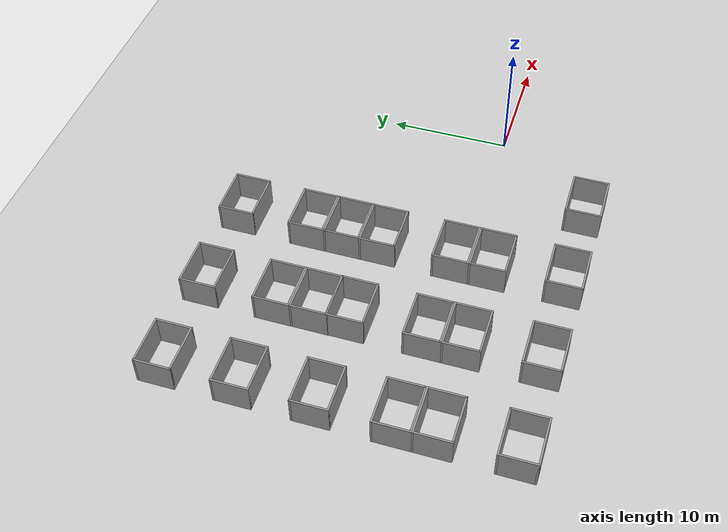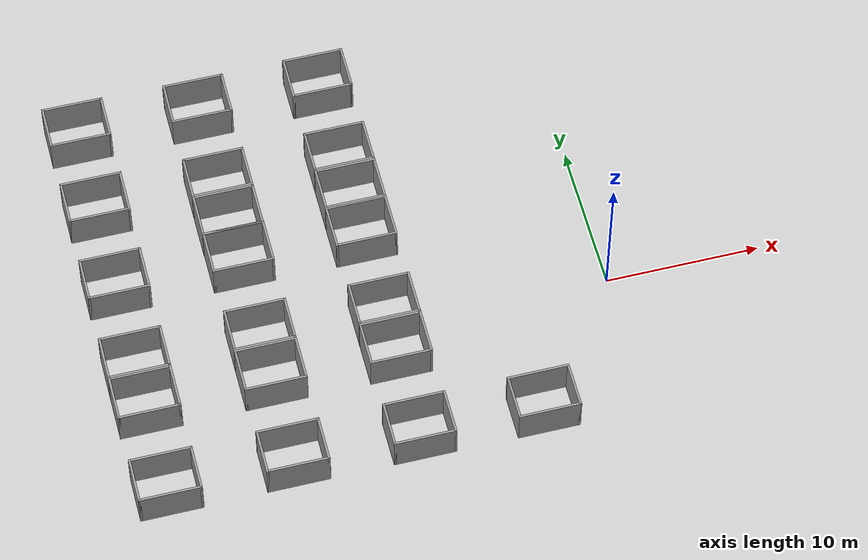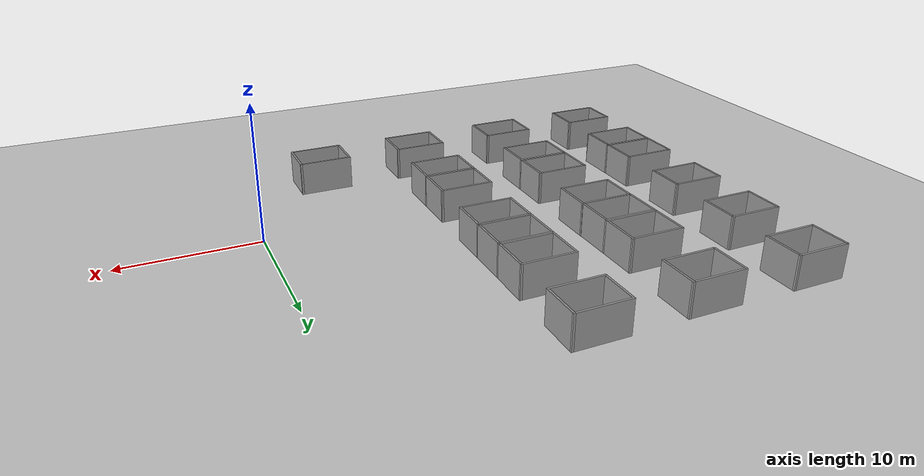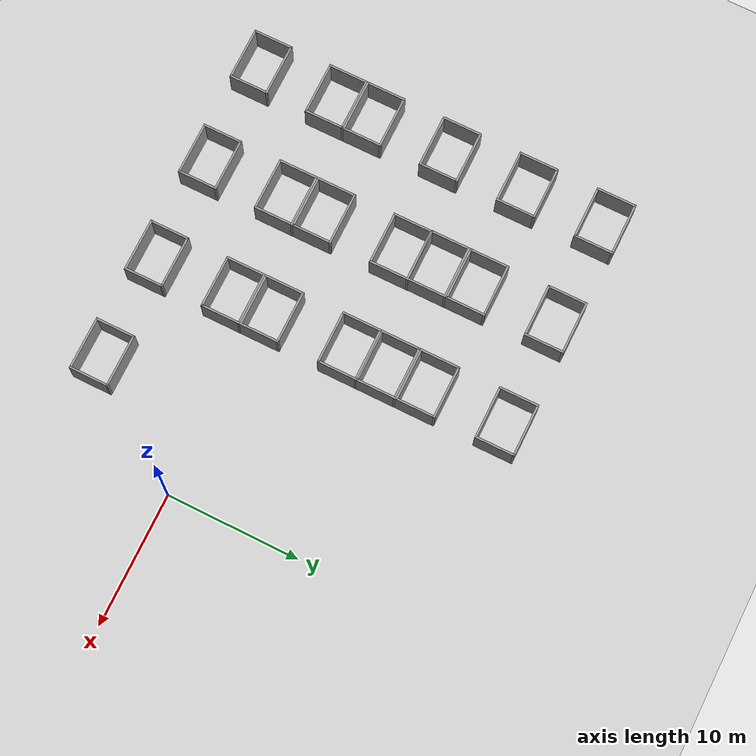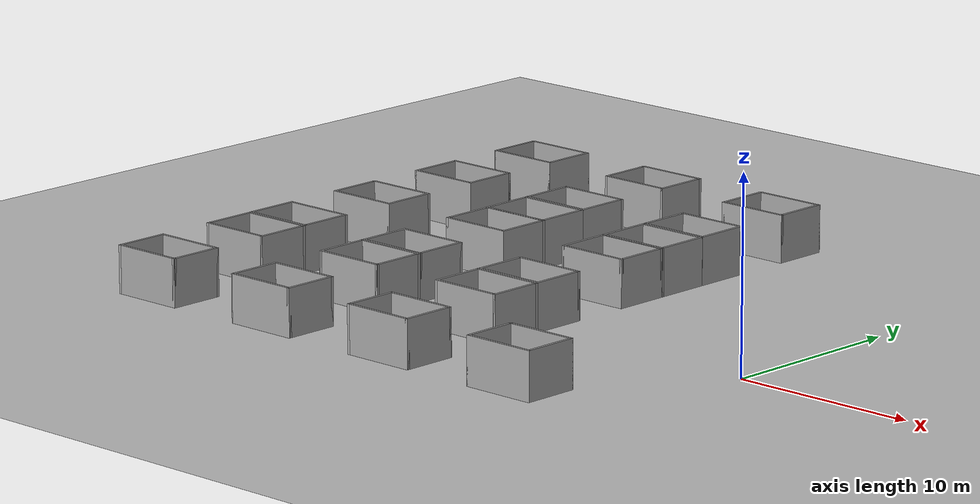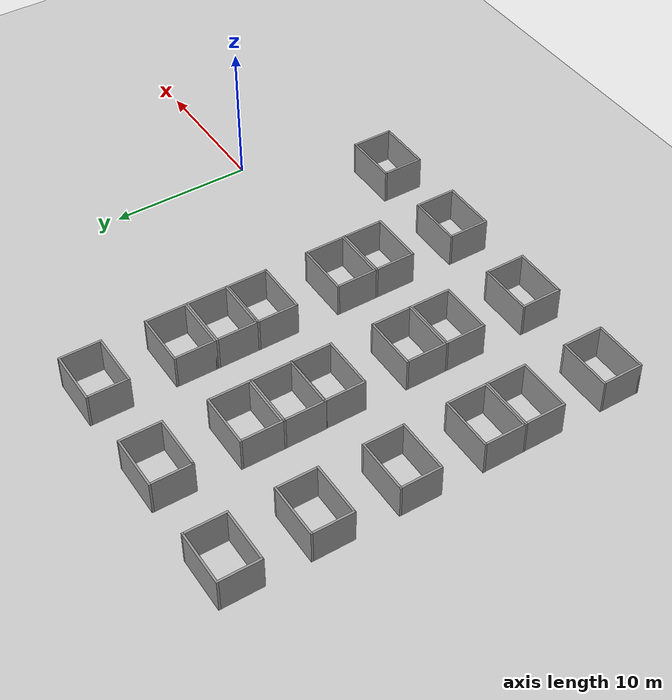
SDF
<sdf version="1.6">
 <world name="default">
  <model name="ground_plane">
   <static>1</static>
   <link name="link">
    <collision name="collision">
     <geometry><plane><normal>0 0 1</normal><size>105 105</size></plane></geometry>
     <surface>
      <contact><collide_bitmask>65535</collide_bitmask></contact>
      <friction><ode><mu>100</mu><mu2>50</mu2></ode></friction>
     </surface>
    </collision>
    <visual name="visual">
     <cast_shadows>0</cast_shadows>
     <geometry><plane><normal>0 0 1</normal><size>105 105</size></plane></geometry>
     <material>
      <script><uri>file://media/materials/scripts/gazebo.material</uri><name>Gazebo/Grey</name></script>
     </material>
    </visual>
   </link>
  </model>
  <model name="base3x4_2">
   <pose>-30.4005 -8.26913 0 0 -0 0</pose>
   <link name="Wall_18">
    <collision name="Wall_18_Collision">
     <geometry><box><size>3 0.15 2.5</size></box></geometry>
     <pose>0 0 1.25 0 -0 0</pose>
    </collision>
    <visual name="Wall_18_Visual">
     <pose>0 0 1.25 0 -0 0</pose>
     <geometry><box><size>3 0.15 2.5</size></box></geometry>
     <material>
      <script><uri>file://media/materials/scripts/gazebo.material</uri><name>Gazebo/Grey</name></script>
      <ambient>1 1 1 1</ambient>
     </material>
     <meta><layer>0</layer></meta>
    </visual>
    <pose>-1.925 -0 0 0 -0 -1.5708</pose>
   </link>
   <link name="Wall_19">
    <collision name="Wall_19_Collision">
     <geometry><box><size>4 0.15 2.5</size></box></geometry>
     <pose>0 0 1.25 0 -0 0</pose>
    </collision>
    <visual name="Wall_19_Visual">
     <pose>0 0 1.25 0 -0 0</pose>
     <geometry><box><size>4 0.15 2.5</size></box></geometry>
     <material>
      <script><uri>file://media/materials/scripts/gazebo.material</uri><name>Gazebo/Grey</name></script>
      <ambient>1 1 1 1</ambient>
     </material>
     <meta><layer>0</layer></meta>
    </visual>
    <pose>-0 -1.425 0 0 -0 0</pose>
   </link>
   <link name="Wall_20">
    <collision name="Wall_20_Collision">
     <geometry><box><size>3 0.15 2.5</size></box></geometry>
     <pose>0 0 1.25 0 -0 0</pose>
    </collision>
    <visual name="Wall_20_Visual">
     <pose>0 0 1.25 0 -0 0</pose>
     <geometry><box><size>3 0.15 2.5</size></box></geometry>
     <material>
      <script><uri>file://media/materials/scripts/gazebo.material</uri><name>Gazebo/Grey</name></script>
      <ambient>1 1 1 1</ambient>
     </material>
     <meta><layer>0</layer></meta>
    </visual>
    <pose>1.925 -0 0 0 -0 1.5708</pose>
   </link>
   <link name="Wall_21">
    <collision name="Wall_21_Collision">
     <geometry><box><size>4 0.15 2.5</size></box></geometry>
     <pose>0 0 1.25 0 -0 0</pose>
    </collision>
    <visual name="Wall_21_Visual">
     <pose>0 0 1.25 0 -0 0</pose>
     <geometry><box><size>4 0.15 2.5</size></box></geometry>
     <material>
      <script><uri>file://media/materials/scripts/gazebo.material</uri><name>Gazebo/Grey</name></script>
      <ambient>1 1 1 1</ambient>
     </material>
     <meta><layer>0</layer></meta>
    </visual>
    <pose>-0 1.425 0 0 -0 3.14159</pose>
   </link>
   <static>1</static>
  </model>
  <model name="base3x4_6">
   <pose>-30.4053 -2.27913 0 0 -0 0</pose>
   <link name="Wall_18">
    <collision name="Wall_18_Collision">
     <geometry><box><size>3 0.15 2.5</size></box></geometry>
     <pose>0 0 1.25 0 -0 0</pose>
    </collision>
    <visual name="Wall_18_Visual">
     <pose>0 0 1.25 0 -0 0</pose>
     <geometry><box><size>3 0.15 2.5</size></box></geometry>
     <material>
      <script><uri>file://media/materials/scripts/gazebo.material</uri><name>Gazebo/Grey</name></script>
      <ambient>1 1 1 1</ambient>
     </material>
     <meta><layer>0</layer></meta>
    </visual>
    <pose>-1.925 -0 0 0 -0 -1.5708</pose>
   </link>
   <link name="Wall_19">
    <collision name="Wall_19_Collision">
     <geometry><box><size>4 0.15 2.5</size></box></geometry>
     <pose>0 0 1.25 0 -0 0</pose>
    </collision>
    <visual name="Wall_19_Visual">
     <pose>0 0 1.25 0 -0 0</pose>
     <geometry><box><size>4 0.15 2.5</size></box></geometry>
     <material>
      <script><uri>file://media/materials/scripts/gazebo.material</uri><name>Gazebo/Grey</name></script>
      <ambient>1 1 1 1</ambient>
     </material>
     <meta><layer>0</layer></meta>
    </visual>
    <pose>-0 -1.425 0 0 -0 0</pose>
   </link>
   <link name="Wall_20">
    <collision name="Wall_20_Collision">
     <geometry><box><size>3 0.15 2.5</size></box></geometry>
     <pose>0 0 1.25 0 -0 0</pose>
    </collision>
    <visual name="Wall_20_Visual">
     <pose>0 0 1.25 0 -0 0</pose>
     <geometry><box><size>3 0.15 2.5</size></box></geometry>
     <material>
      <script><uri>file://media/materials/scripts/gazebo.material</uri><name>Gazebo/Grey</name></script>
      <ambient>1 1 1 1</ambient>
     </material>
     <meta><layer>0</layer></meta>
    </visual>
    <pose>1.925 -0 0 0 -0 1.5708</pose>
   </link>
   <link name="Wall_21">
    <collision name="Wall_21_Collision">
     <geometry><box><size>4 0.15 2.5</size></box></geometry>
     <pose>0 0 1.25 0 -0 0</pose>
    </collision>
    <visual name="Wall_21_Visual">
     <pose>0 0 1.25 0 -0 0</pose>
     <geometry><box><size>4 0.15 2.5</size></box></geometry>
     <material>
      <script><uri>file://media/materials/scripts/gazebo.material</uri><name>Gazebo/Grey</name></script>
      <ambient>1 1 1 1</ambient>
     </material>
     <meta><layer>0</layer></meta>
    </visual>
    <pose>-0 1.425 0 0 -0 3.14159</pose>
   </link>
   <static>1</static>
  </model>
  <model name="base3x4_8">
   <pose>-30.4105 0.701698 0 0 -0 0</pose>
   <link name="Wall_18">
    <collision name="Wall_18_Collision">
     <geometry><box><size>3 0.15 2.5</size></box></geometry>
     <pose>0 0 1.25 0 -0 0</pose>
    </collision>
    <visual name="Wall_18_Visual">
     <pose>0 0 1.25 0 -0 0</pose>
     <geometry><box><size>3 0.15 2.5</size></box></geometry>
     <material>
      <script><uri>file://media/materials/scripts/gazebo.material</uri><name>Gazebo/Grey</name></script>
      <ambient>1 1 1 1</ambient>
     </material>
     <meta><layer>0</layer></meta>
    </visual>
    <pose>-1.925 -0 0 0 -0 -1.5708</pose>
   </link>
   <link name="Wall_19">
    <collision name="Wall_19_Collision">
     <geometry><box><size>4 0.15 2.5</size></box></geometry>
     <pose>0 0 1.25 0 -0 0</pose>
    </collision>
    <visual name="Wall_19_Visual">
     <pose>0 0 1.25 0 -0 0</pose>
     <geometry><box><size>4 0.15 2.5</size></box></geometry>
     <material>
      <script><uri>file://media/materials/scripts/gazebo.material</uri><name>Gazebo/Grey</name></script>
      <ambient>1 1 1 1</ambient>
     </material>
     <meta><layer>0</layer></meta>
    </visual>
    <pose>-0 -1.425 0 0 -0 0</pose>
   </link>
   <link name="Wall_20">
    <collision name="Wall_20_Collision">
     <geometry><box><size>3 0.15 2.5</size></box></geometry>
     <pose>0 0 1.25 0 -0 0</pose>
    </collision>
    <visual name="Wall_20_Visual">
     <pose>0 0 1.25 0 -0 0</pose>
     <geometry><box><size>3 0.15 2.5</size></box></geometry>
     <material>
      <script><uri>file://media/materials/scripts/gazebo.material</uri><name>Gazebo/Grey</name></script>
      <ambient>1 1 1 1</ambient>
     </material>
     <meta><layer>0</layer></meta>
    </visual>
    <pose>1.925 -0 0 0 -0 1.5708</pose>
   </link>
   <link name="Wall_21">
    <collision name="Wall_21_Collision">
     <geometry><box><size>4 0.15 2.5</size></box></geometry>
     <pose>0 0 1.25 0 -0 0</pose>
    </collision>
    <visual name="Wall_21_Visual">
     <pose>0 0 1.25 0 -0 0</pose>
     <geometry><box><size>4 0.15 2.5</size></box></geometry>
     <material>
      <script><uri>file://media/materials/scripts/gazebo.material</uri><name>Gazebo/Grey</name></script>
      <ambient>1 1 1 1</ambient>
     </material>
     <meta><layer>0</layer></meta>
    </visual>
    <pose>-0 1.425 0 0 -0 3.14159</pose>
   </link>
   <static>1</static>
  </model>
  <model name="base3x4_13">
   <pose>-30.4247 6.69734 0 0 -0 0</pose>
   <link name="Wall_18">
    <collision name="Wall_18_Collision">
     <geometry><box><size>3 0.15 2.5</size></box></geometry>
     <pose>0 0 1.25 0 -0 0</pose>
    </collision>
    <visual name="Wall_18_Visual">
     <pose>0 0 1.25 0 -0 0</pose>
     <geometry><box><size>3 0.15 2.5</size></box></geometry>
     <material>
      <script><uri>file://media/materials/scripts/gazebo.material</uri><name>Gazebo/Grey</name></script>
      <ambient>1 1 1 1</ambient>
     </material>
     <meta><layer>0</layer></meta>
    </visual>
    <pose>-1.925 -0 0 0 -0 -1.5708</pose>
   </link>
   <link name="Wall_19">
    <collision name="Wall_19_Collision">
     <geometry><box><size>4 0.15 2.5</size></box></geometry>
     <pose>0 0 1.25 0 -0 0</pose>
    </collision>
    <visual name="Wall_19_Visual">
     <pose>0 0 1.25 0 -0 0</pose>
     <geometry><box><size>4 0.15 2.5</size></box></geometry>
     <material>
      <script><uri>file://media/materials/scripts/gazebo.material</uri><name>Gazebo/Grey</name></script>
      <ambient>1 1 1 1</ambient>
     </material>
     <meta><layer>0</layer></meta>
    </visual>
    <pose>-0 -1.425 0 0 -0 0</pose>
   </link>
   <link name="Wall_20">
    <collision name="Wall_20_Collision">
     <geometry><box><size>3 0.15 2.5</size></box></geometry>
     <pose>0 0 1.25 0 -0 0</pose>
    </collision>
    <visual name="Wall_20_Visual">
     <pose>0 0 1.25 0 -0 0</pose>
     <geometry><box><size>3 0.15 2.5</size></box></geometry>
     <material>
      <script><uri>file://media/materials/scripts/gazebo.material</uri><name>Gazebo/Grey</name></script>
      <ambient>1 1 1 1</ambient>
     </material>
     <meta><layer>0</layer></meta>
    </visual>
    <pose>1.925 -0 0 0 -0 1.5708</pose>
   </link>
   <link name="Wall_21">
    <collision name="Wall_21_Collision">
     <geometry><box><size>4 0.15 2.5</size></box></geometry>
     <pose>0 0 1.25 0 -0 0</pose>
    </collision>
    <visual name="Wall_21_Visual">
     <pose>0 0 1.25 0 -0 0</pose>
     <geometry><box><size>4 0.15 2.5</size></box></geometry>
     <material>
      <script><uri>file://media/materials/scripts/gazebo.material</uri><name>Gazebo/Grey</name></script>
      <ambient>1 1 1 1</ambient>
     </material>
     <meta><layer>0</layer></meta>
    </visual>
    <pose>-0 1.425 0 0 -0 3.14159</pose>
   </link>
   <static>1</static>
  </model>
  <model name="base3x4_68">
   <pose>-22.41 -8.21789 0 0 -0 0</pose>
   <link name="Wall_18">
    <collision name="Wall_18_Collision">
     <geometry><box><size>3 0.15 2.5</size></box></geometry>
     <pose>0 0 1.25 0 -0 0</pose>
    </collision>
    <visual name="Wall_18_Visual">
     <pose>0 0 1.25 0 -0 0</pose>
     <geometry><box><size>3 0.15 2.5</size></box></geometry>
     <material>
      <script><uri>file://media/materials/scripts/gazebo.material</uri><name>Gazebo/Grey</name></script>
      <ambient>1 1 1 1</ambient>
     </material>
     <meta><layer>0</layer></meta>
    </visual>
    <pose>-1.925 -0 0 0 -0 -1.5708</pose>
   </link>
   <link name="Wall_19">
    <collision name="Wall_19_Collision">
     <geometry><box><size>4 0.15 2.5</size></box></geometry>
     <pose>0 0 1.25 0 -0 0</pose>
    </collision>
    <visual name="Wall_19_Visual">
     <pose>0 0 1.25 0 -0 0</pose>
     <geometry><box><size>4 0.15 2.5</size></box></geometry>
     <material>
      <script><uri>file://media/materials/scripts/gazebo.material</uri><name>Gazebo/Grey</name></script>
      <ambient>1 1 1 1</ambient>
     </material>
     <meta><layer>0</layer></meta>
    </visual>
    <pose>-0 -1.425 0 0 -0 0</pose>
   </link>
   <link name="Wall_20">
    <collision name="Wall_20_Collision">
     <geometry><box><size>3 0.15 2.5</size></box></geometry>
     <pose>0 0 1.25 0 -0 0</pose>
    </collision>
    <visual name="Wall_20_Visual">
     <pose>0 0 1.25 0 -0 0</pose>
     <geometry><box><size>3 0.15 2.5</size></box></geometry>
     <material>
      <script><uri>file://media/materials/scripts/gazebo.material</uri><name>Gazebo/Grey</name></script>
      <ambient>1 1 1 1</ambient>
     </material>
     <meta><layer>0</layer></meta>
    </visual>
    <pose>1.925 -0 0 0 -0 1.5708</pose>
   </link>
   <link name="Wall_21">
    <collision name="Wall_21_Collision">
     <geometry><box><size>4 0.15 2.5</size></box></geometry>
     <pose>0 0 1.25 0 -0 0</pose>
    </collision>
    <visual name="Wall_21_Visual">
     <pose>0 0 1.25 0 -0 0</pose>
     <geometry><box><size>4 0.15 2.5</size></box></geometry>
     <material>
      <script><uri>file://media/materials/scripts/gazebo.material</uri><name>Gazebo/Grey</name></script>
      <ambient>1 1 1 1</ambient>
     </material>
     <meta><layer>0</layer></meta>
    </visual>
    <pose>-0 1.425 0 0 -0 3.14159</pose>
   </link>
   <static>1</static>
  </model>
  <model name="base3x4_70">
   <pose>-22.4069 -2.22304 0 0 -0 0</pose>
   <link name="Wall_18">
    <collision name="Wall_18_Collision">
     <geometry><box><size>3 0.15 2.5</size></box></geometry>
     <pose>0 0 1.25 0 -0 0</pose>
    </collision>
    <visual name="Wall_18_Visual">
     <pose>0 0 1.25 0 -0 0</pose>
     <geometry><box><size>3 0.15 2.5</size></box></geometry>
     <material>
      <script><uri>file://media/materials/scripts/gazebo.material</uri><name>Gazebo/Grey</name></script>
      <ambient>1 1 1 1</ambient>
     </material>
     <meta><layer>0</layer></meta>
    </visual>
    <pose>-1.925 -0 0 0 -0 -1.5708</pose>
   </link>
   <link name="Wall_19">
    <collision name="Wall_19_Collision">
     <geometry><box><size>4 0.15 2.5</size></box></geometry>
     <pose>0 0 1.25 0 -0 0</pose>
    </collision>
    <visual name="Wall_19_Visual">
     <pose>0 0 1.25 0 -0 0</pose>
     <geometry><box><size>4 0.15 2.5</size></box></geometry>
     <material>
      <script><uri>file://media/materials/scripts/gazebo.material</uri><name>Gazebo/Grey</name></script>
      <ambient>1 1 1 1</ambient>
     </material>
     <meta><layer>0</layer></meta>
    </visual>
    <pose>-0 -1.425 0 0 -0 0</pose>
   </link>
   <link name="Wall_20">
    <collision name="Wall_20_Collision">
     <geometry><box><size>3 0.15 2.5</size></box></geometry>
     <pose>0 0 1.25 0 -0 0</pose>
    </collision>
    <visual name="Wall_20_Visual">
     <pose>0 0 1.25 0 -0 0</pose>
     <geometry><box><size>3 0.15 2.5</size></box></geometry>
     <material>
      <script><uri>file://media/materials/scripts/gazebo.material</uri><name>Gazebo/Grey</name></script>
      <ambient>1 1 1 1</ambient>
     </material>
     <meta><layer>0</layer></meta>
    </visual>
    <pose>1.925 -0 0 0 -0 1.5708</pose>
   </link>
   <link name="Wall_21">
    <collision name="Wall_21_Collision">
     <geometry><box><size>4 0.15 2.5</size></box></geometry>
     <pose>0 0 1.25 0 -0 0</pose>
    </collision>
    <visual name="Wall_21_Visual">
     <pose>0 0 1.25 0 -0 0</pose>
     <geometry><box><size>4 0.15 2.5</size></box></geometry>
     <material>
      <script><uri>file://media/materials/scripts/gazebo.material</uri><name>Gazebo/Grey</name></script>
      <ambient>1 1 1 1</ambient>
     </material>
     <meta><layer>0</layer></meta>
    </visual>
    <pose>-0 1.425 0 0 -0 3.14159</pose>
   </link>
   <static>1</static>
  </model>
  <model name="base3x4_71">
   <pose>-22.4105 0.763278 0 0 -0 0</pose>
   <link name="Wall_18">
    <collision name="Wall_18_Collision">
     <geometry><box><size>3 0.15 2.5</size></box></geometry>
     <pose>0 0 1.25 0 -0 0</pose>
    </collision>
    <visual name="Wall_18_Visual">
     <pose>0 0 1.25 0 -0 0</pose>
     <geometry><box><size>3 0.15 2.5</size></box></geometry>
     <material>
      <script><uri>file://media/materials/scripts/gazebo.material</uri><name>Gazebo/Grey</name></script>
      <ambient>1 1 1 1</ambient>
     </material>
     <meta><layer>0</layer></meta>
    </visual>
    <pose>-1.925 -0 0 0 -0 -1.5708</pose>
   </link>
   <link name="Wall_19">
    <collision name="Wall_19_Collision">
     <geometry><box><size>4 0.15 2.5</size></box></geometry>
     <pose>0 0 1.25 0 -0 0</pose>
    </collision>
    <visual name="Wall_19_Visual">
     <pose>0 0 1.25 0 -0 0</pose>
     <geometry><box><size>4 0.15 2.5</size></box></geometry>
     <material>
      <script><uri>file://media/materials/scripts/gazebo.material</uri><name>Gazebo/Grey</name></script>
      <ambient>1 1 1 1</ambient>
     </material>
     <meta><layer>0</layer></meta>
    </visual>
    <pose>-0 -1.425 0 0 -0 0</pose>
   </link>
   <link name="Wall_20">
    <collision name="Wall_20_Collision">
     <geometry><box><size>3 0.15 2.5</size></box></geometry>
     <pose>0 0 1.25 0 -0 0</pose>
    </collision>
    <visual name="Wall_20_Visual">
     <pose>0 0 1.25 0 -0 0</pose>
     <geometry><box><size>3 0.15 2.5</size></box></geometry>
     <material>
      <script><uri>file://media/materials/scripts/gazebo.material</uri><name>Gazebo/Grey</name></script>
      <ambient>1 1 1 1</ambient>
     </material>
     <meta><layer>0</layer></meta>
    </visual>
    <pose>1.925 -0 0 0 -0 1.5708</pose>
   </link>
   <link name="Wall_21">
    <collision name="Wall_21_Collision">
     <geometry><box><size>4 0.15 2.5</size></box></geometry>
     <pose>0 0 1.25 0 -0 0</pose>
    </collision>
    <visual name="Wall_21_Visual">
     <pose>0 0 1.25 0 -0 0</pose>
     <geometry><box><size>4 0.15 2.5</size></box></geometry>
     <material>
      <script><uri>file://media/materials/scripts/gazebo.material</uri><name>Gazebo/Grey</name></script>
      <ambient>1 1 1 1</ambient>
     </material>
     <meta><layer>0</layer></meta>
    </visual>
    <pose>-0 1.425 0 0 -0 3.14159</pose>
   </link>
   <static>1</static>
  </model>
  <model name="base3x4_73">
   <pose>-22.4114 6.74221 0 0 -0 0</pose>
   <link name="Wall_18">
    <collision name="Wall_18_Collision">
     <geometry><box><size>3 0.15 2.5</size></box></geometry>
     <pose>0 0 1.25 0 -0 0</pose>
    </collision>
    <visual name="Wall_18_Visual">
     <pose>0 0 1.25 0 -0 0</pose>
     <geometry><box><size>3 0.15 2.5</size></box></geometry>
     <material>
      <script><uri>file://media/materials/scripts/gazebo.material</uri><name>Gazebo/Grey</name></script>
      <ambient>1 1 1 1</ambient>
     </material>
     <meta><layer>0</layer></meta>
    </visual>
    <pose>-1.925 -0 0 0 -0 -1.5708</pose>
   </link>
   <link name="Wall_19">
    <collision name="Wall_19_Collision">
     <geometry><box><size>4 0.15 2.5</size></box></geometry>
     <pose>0 0 1.25 0 -0 0</pose>
    </collision>
    <visual name="Wall_19_Visual">
     <pose>0 0 1.25 0 -0 0</pose>
     <geometry><box><size>4 0.15 2.5</size></box></geometry>
     <material>
      <script><uri>file://media/materials/scripts/gazebo.material</uri><name>Gazebo/Grey</name></script>
      <ambient>1 1 1 1</ambient>
     </material>
     <meta><layer>0</layer></meta>
    </visual>
    <pose>-0 -1.425 0 0 -0 0</pose>
   </link>
   <link name="Wall_20">
    <collision name="Wall_20_Collision">
     <geometry><box><size>3 0.15 2.5</size></box></geometry>
     <pose>0 0 1.25 0 -0 0</pose>
    </collision>
    <visual name="Wall_20_Visual">
     <pose>0 0 1.25 0 -0 0</pose>
     <geometry><box><size>3 0.15 2.5</size></box></geometry>
     <material>
      <script><uri>file://media/materials/scripts/gazebo.material</uri><name>Gazebo/Grey</name></script>
      <ambient>1 1 1 1</ambient>
     </material>
     <meta><layer>0</layer></meta>
    </visual>
    <pose>1.925 -0 0 0 -0 1.5708</pose>
   </link>
   <link name="Wall_21">
    <collision name="Wall_21_Collision">
     <geometry><box><size>4 0.15 2.5</size></box></geometry>
     <pose>0 0 1.25 0 -0 0</pose>
    </collision>
    <visual name="Wall_21_Visual">
     <pose>0 0 1.25 0 -0 0</pose>
     <geometry><box><size>4 0.15 2.5</size></box></geometry>
     <material>
      <script><uri>file://media/materials/scripts/gazebo.material</uri><name>Gazebo/Grey</name></script>
      <ambient>1 1 1 1</ambient>
     </material>
     <meta><layer>0</layer></meta>
    </visual>
    <pose>-0 1.425 0 0 -0 3.14159</pose>
   </link>
   <static>1</static>
  </model>
  <model name="base3x4_76">
   <pose>-14.4158 -8.25268 0 0 -0 0</pose>
   <link name="Wall_18">
    <collision name="Wall_18_Collision">
     <geometry><box><size>3 0.15 2.5</size></box></geometry>
     <pose>0 0 1.25 0 -0 0</pose>
    </collision>
    <visual name="Wall_18_Visual">
     <pose>0 0 1.25 0 -0 0</pose>
     <geometry><box><size>3 0.15 2.5</size></box></geometry>
     <material>
      <script><uri>file://media/materials/scripts/gazebo.material</uri><name>Gazebo/Grey</name></script>
      <ambient>1 1 1 1</ambient>
     </material>
     <meta><layer>0</layer></meta>
    </visual>
    <pose>-1.925 -0 0 0 -0 -1.5708</pose>
   </link>
   <link name="Wall_19">
    <collision name="Wall_19_Collision">
     <geometry><box><size>4 0.15 2.5</size></box></geometry>
     <pose>0 0 1.25 0 -0 0</pose>
    </collision>
    <visual name="Wall_19_Visual">
     <pose>0 0 1.25 0 -0 0</pose>
     <geometry><box><size>4 0.15 2.5</size></box></geometry>
     <material>
      <script><uri>file://media/materials/scripts/gazebo.material</uri><name>Gazebo/Grey</name></script>
      <ambient>1 1 1 1</ambient>
     </material>
     <meta><layer>0</layer></meta>
    </visual>
    <pose>-0 -1.425 0 0 -0 0</pose>
   </link>
   <link name="Wall_20">
    <collision name="Wall_20_Collision">
     <geometry><box><size>3 0.15 2.5</size></box></geometry>
     <pose>0 0 1.25 0 -0 0</pose>
    </collision>
    <visual name="Wall_20_Visual">
     <pose>0 0 1.25 0 -0 0</pose>
     <geometry><box><size>3 0.15 2.5</size></box></geometry>
     <material>
      <script><uri>file://media/materials/scripts/gazebo.material</uri><name>Gazebo/Grey</name></script>
      <ambient>1 1 1 1</ambient>
     </material>
     <meta><layer>0</layer></meta>
    </visual>
    <pose>1.925 -0 0 0 -0 1.5708</pose>
   </link>
   <link name="Wall_21">
    <collision name="Wall_21_Collision">
     <geometry><box><size>4 0.15 2.5</size></box></geometry>
     <pose>0 0 1.25 0 -0 0</pose>
    </collision>
    <visual name="Wall_21_Visual">
     <pose>0 0 1.25 0 -0 0</pose>
     <geometry><box><size>4 0.15 2.5</size></box></geometry>
     <material>
      <script><uri>file://media/materials/scripts/gazebo.material</uri><name>Gazebo/Grey</name></script>
      <ambient>1 1 1 1</ambient>
     </material>
     <meta><layer>0</layer></meta>
    </visual>
    <pose>-0 1.425 0 0 -0 3.14159</pose>
   </link>
   <static>1</static>
  </model>
  <model name="base3x4_78">
   <pose>-14.4184 -2.26297 0 0 -0 0</pose>
   <link name="Wall_18">
    <collision name="Wall_18_Collision">
     <geometry><box><size>3 0.15 2.5</size></box></geometry>
     <pose>0 0 1.25 0 -0 0</pose>
    </collision>
    <visual name="Wall_18_Visual">
     <pose>0 0 1.25 0 -0 0</pose>
     <geometry><box><size>3 0.15 2.5</size></box></geometry>
     <material>
      <script><uri>file://media/materials/scripts/gazebo.material</uri><name>Gazebo/Grey</name></script>
      <ambient>1 1 1 1</ambient>
     </material>
     <meta><layer>0</layer></meta>
    </visual>
    <pose>-1.925 -0 0 0 -0 -1.5708</pose>
   </link>
   <link name="Wall_19">
    <collision name="Wall_19_Collision">
     <geometry><box><size>4 0.15 2.5</size></box></geometry>
     <pose>0 0 1.25 0 -0 0</pose>
    </collision>
    <visual name="Wall_19_Visual">
     <pose>0 0 1.25 0 -0 0</pose>
     <geometry><box><size>4 0.15 2.5</size></box></geometry>
     <material>
      <script><uri>file://media/materials/scripts/gazebo.material</uri><name>Gazebo/Grey</name></script>
      <ambient>1 1 1 1</ambient>
     </material>
     <meta><layer>0</layer></meta>
    </visual>
    <pose>-0 -1.425 0 0 -0 0</pose>
   </link>
   <link name="Wall_20">
    <collision name="Wall_20_Collision">
     <geometry><box><size>3 0.15 2.5</size></box></geometry>
     <pose>0 0 1.25 0 -0 0</pose>
    </collision>
    <visual name="Wall_20_Visual">
     <pose>0 0 1.25 0 -0 0</pose>
     <geometry><box><size>3 0.15 2.5</size></box></geometry>
     <material>
      <script><uri>file://media/materials/scripts/gazebo.material</uri><name>Gazebo/Grey</name></script>
      <ambient>1 1 1 1</ambient>
     </material>
     <meta><layer>0</layer></meta>
    </visual>
    <pose>1.925 -0 0 0 -0 1.5708</pose>
   </link>
   <link name="Wall_21">
    <collision name="Wall_21_Collision">
     <geometry><box><size>4 0.15 2.5</size></box></geometry>
     <pose>0 0 1.25 0 -0 0</pose>
    </collision>
    <visual name="Wall_21_Visual">
     <pose>0 0 1.25 0 -0 0</pose>
     <geometry><box><size>4 0.15 2.5</size></box></geometry>
     <material>
      <script><uri>file://media/materials/scripts/gazebo.material</uri><name>Gazebo/Grey</name></script>
      <ambient>1 1 1 1</ambient>
     </material>
     <meta><layer>0</layer></meta>
    </visual>
    <pose>-0 1.425 0 0 -0 3.14159</pose>
   </link>
   <static>1</static>
  </model>
  <model name="base3x4_79">
   <pose>-14.4206 0.731399 0 0 -0 0</pose>
   <link name="Wall_18">
    <collision name="Wall_18_Collision">
     <geometry><box><size>3 0.15 2.5</size></box></geometry>
     <pose>0 0 1.25 0 -0 0</pose>
    </collision>
    <visual name="Wall_18_Visual">
     <pose>0 0 1.25 0 -0 0</pose>
     <geometry><box><size>3 0.15 2.5</size></box></geometry>
     <material>
      <script><uri>file://media/materials/scripts/gazebo.material</uri><name>Gazebo/Grey</name></script>
      <ambient>1 1 1 1</ambient>
     </material>
     <meta><layer>0</layer></meta>
    </visual>
    <pose>-1.925 -0 0 0 -0 -1.5708</pose>
   </link>
   <link name="Wall_19">
    <collision name="Wall_19_Collision">
     <geometry><box><size>4 0.15 2.5</size></box></geometry>
     <pose>0 0 1.25 0 -0 0</pose>
    </collision>
    <visual name="Wall_19_Visual">
     <pose>0 0 1.25 0 -0 0</pose>
     <geometry><box><size>4 0.15 2.5</size></box></geometry>
     <material>
      <script><uri>file://media/materials/scripts/gazebo.material</uri><name>Gazebo/Grey</name></script>
      <ambient>1 1 1 1</ambient>
     </material>
     <meta><layer>0</layer></meta>
    </visual>
    <pose>-0 -1.425 0 0 -0 0</pose>
   </link>
   <link name="Wall_20">
    <collision name="Wall_20_Collision">
     <geometry><box><size>3 0.15 2.5</size></box></geometry>
     <pose>0 0 1.25 0 -0 0</pose>
    </collision>
    <visual name="Wall_20_Visual">
     <pose>0 0 1.25 0 -0 0</pose>
     <geometry><box><size>3 0.15 2.5</size></box></geometry>
     <material>
      <script><uri>file://media/materials/scripts/gazebo.material</uri><name>Gazebo/Grey</name></script>
      <ambient>1 1 1 1</ambient>
     </material>
     <meta><layer>0</layer></meta>
    </visual>
    <pose>1.925 -0 0 0 -0 1.5708</pose>
   </link>
   <link name="Wall_21">
    <collision name="Wall_21_Collision">
     <geometry><box><size>4 0.15 2.5</size></box></geometry>
     <pose>0 0 1.25 0 -0 0</pose>
    </collision>
    <visual name="Wall_21_Visual">
     <pose>0 0 1.25 0 -0 0</pose>
     <geometry><box><size>4 0.15 2.5</size></box></geometry>
     <material>
      <script><uri>file://media/materials/scripts/gazebo.material</uri><name>Gazebo/Grey</name></script>
      <ambient>1 1 1 1</ambient>
     </material>
     <meta><layer>0</layer></meta>
    </visual>
    <pose>-0 1.425 0 0 -0 3.14159</pose>
   </link>
   <static>1</static>
  </model>
  <model name="base3x4_81">
   <pose>-14.4195 6.71554 0 0 -0 0</pose>
   <link name="Wall_18">
    <collision name="Wall_18_Collision">
     <geometry><box><size>3 0.15 2.5</size></box></geometry>
     <pose>0 0 1.25 0 -0 0</pose>
    </collision>
    <visual name="Wall_18_Visual">
     <pose>0 0 1.25 0 -0 0</pose>
     <geometry><box><size>3 0.15 2.5</size></box></geometry>
     <material>
      <script><uri>file://media/materials/scripts/gazebo.material</uri><name>Gazebo/Grey</name></script>
      <ambient>1 1 1 1</ambient>
     </material>
     <meta><layer>0</layer></meta>
    </visual>
    <pose>-1.925 -0 0 0 -0 -1.5708</pose>
   </link>
   <link name="Wall_19">
    <collision name="Wall_19_Collision">
     <geometry><box><size>4 0.15 2.5</size></box></geometry>
     <pose>0 0 1.25 0 -0 0</pose>
    </collision>
    <visual name="Wall_19_Visual">
     <pose>0 0 1.25 0 -0 0</pose>
     <geometry><box><size>4 0.15 2.5</size></box></geometry>
     <material>
      <script><uri>file://media/materials/scripts/gazebo.material</uri><name>Gazebo/Grey</name></script>
      <ambient>1 1 1 1</ambient>
     </material>
     <meta><layer>0</layer></meta>
    </visual>
    <pose>-0 -1.425 0 0 -0 0</pose>
   </link>
   <link name="Wall_20">
    <collision name="Wall_20_Collision">
     <geometry><box><size>3 0.15 2.5</size></box></geometry>
     <pose>0 0 1.25 0 -0 0</pose>
    </collision>
    <visual name="Wall_20_Visual">
     <pose>0 0 1.25 0 -0 0</pose>
     <geometry><box><size>3 0.15 2.5</size></box></geometry>
     <material>
      <script><uri>file://media/materials/scripts/gazebo.material</uri><name>Gazebo/Grey</name></script>
      <ambient>1 1 1 1</ambient>
     </material>
     <meta><layer>0</layer></meta>
    </visual>
    <pose>1.925 -0 0 0 -0 1.5708</pose>
   </link>
   <link name="Wall_21">
    <collision name="Wall_21_Collision">
     <geometry><box><size>4 0.15 2.5</size></box></geometry>
     <pose>0 0 1.25 0 -0 0</pose>
    </collision>
    <visual name="Wall_21_Visual">
     <pose>0 0 1.25 0 -0 0</pose>
     <geometry><box><size>4 0.15 2.5</size></box></geometry>
     <material>
      <script><uri>file://media/materials/scripts/gazebo.material</uri><name>Gazebo/Grey</name></script>
      <ambient>1 1 1 1</ambient>
     </material>
     <meta><layer>0</layer></meta>
    </visual>
    <pose>-0 1.425 0 0 -0 3.14159</pose>
   </link>
   <static>1</static>
  </model>
  <model name="base3x4_50">
   <pose>-22.4338 9.61846 0 0 -0 0</pose>
   <link name="Wall_18">
    <collision name="Wall_18_Collision">
     <geometry><box><size>3 0.15 2.5</size></box></geometry>
     <pose>0 0 1.25 0 -0 0</pose>
    </collision>
    <visual name="Wall_18_Visual">
     <pose>0 0 1.25 0 -0 0</pose>
     <geometry><box><size>3 0.15 2.5</size></box></geometry>
     <material>
      <script><uri>file://media/materials/scripts/gazebo.material</uri><name>Gazebo/Grey</name></script>
      <ambient>1 1 1 1</ambient>
     </material>
     <meta><layer>0</layer></meta>
    </visual>
    <pose>-1.925 -0 0 0 -0 -1.5708</pose>
   </link>
   <link name="Wall_19">
    <collision name="Wall_19_Collision">
     <geometry><box><size>4 0.15 2.5</size></box></geometry>
     <pose>0 0 1.25 0 -0 0</pose>
    </collision>
    <visual name="Wall_19_Visual">
     <pose>0 0 1.25 0 -0 0</pose>
     <geometry><box><size>4 0.15 2.5</size></box></geometry>
     <material>
      <script><uri>file://media/materials/scripts/gazebo.material</uri><name>Gazebo/Grey</name></script>
      <ambient>1 1 1 1</ambient>
     </material>
     <meta><layer>0</layer></meta>
    </visual>
    <pose>-0 -1.425 0 0 -0 0</pose>
   </link>
   <link name="Wall_20">
    <collision name="Wall_20_Collision">
     <geometry><box><size>3 0.15 2.5</size></box></geometry>
     <pose>0 0 1.25 0 -0 0</pose>
    </collision>
    <visual name="Wall_20_Visual">
     <pose>0 0 1.25 0 -0 0</pose>
     <geometry><box><size>3 0.15 2.5</size></box></geometry>
     <material>
      <script><uri>file://media/materials/scripts/gazebo.material</uri><name>Gazebo/Grey</name></script>
      <ambient>1 1 1 1</ambient>
     </material>
     <meta><layer>0</layer></meta>
    </visual>
    <pose>1.925 -0 0 0 -0 1.5708</pose>
   </link>
   <link name="Wall_21">
    <collision name="Wall_21_Collision">
     <geometry><box><size>4 0.15 2.5</size></box></geometry>
     <pose>0 0 1.25 0 -0 0</pose>
    </collision>
    <visual name="Wall_21_Visual">
     <pose>0 0 1.25 0 -0 0</pose>
     <geometry><box><size>4 0.15 2.5</size></box></geometry>
     <material>
      <script><uri>file://media/materials/scripts/gazebo.material</uri><name>Gazebo/Grey</name></script>
      <ambient>1 1 1 1</ambient>
     </material>
     <meta><layer>0</layer></meta>
    </visual>
    <pose>-0 1.425 0 0 -0 3.14159</pose>
   </link>
   <static>1</static>
  </model>
  <model name="base3x4_66">
   <pose>-14.4193 9.67951 0 0 -0 0</pose>
   <link name="Wall_18">
    <collision name="Wall_18_Collision">
     <geometry><box><size>3 0.15 2.5</size></box></geometry>
     <pose>0 0 1.25 0 -0 0</pose>
    </collision>
    <visual name="Wall_18_Visual">
     <pose>0 0 1.25 0 -0 0</pose>
     <geometry><box><size>3 0.15 2.5</size></box></geometry>
     <material>
      <script><uri>file://media/materials/scripts/gazebo.material</uri><name>Gazebo/Grey</name></script>
      <ambient>1 1 1 1</ambient>
     </material>
     <meta><layer>0</layer></meta>
    </visual>
    <pose>-1.925 -0 0 0 -0 -1.5708</pose>
   </link>
   <link name="Wall_19">
    <collision name="Wall_19_Collision">
     <geometry><box><size>4 0.15 2.5</size></box></geometry>
     <pose>0 0 1.25 0 -0 0</pose>
    </collision>
    <visual name="Wall_19_Visual">
     <pose>0 0 1.25 0 -0 0</pose>
     <geometry><box><size>4 0.15 2.5</size></box></geometry>
     <material>
      <script><uri>file://media/materials/scripts/gazebo.material</uri><name>Gazebo/Grey</name></script>
      <ambient>1 1 1 1</ambient>
     </material>
     <meta><layer>0</layer></meta>
    </visual>
    <pose>-0 -1.425 0 0 -0 0</pose>
   </link>
   <link name="Wall_20">
    <collision name="Wall_20_Collision">
     <geometry><box><size>3 0.15 2.5</size></box></geometry>
     <pose>0 0 1.25 0 -0 0</pose>
    </collision>
    <visual name="Wall_20_Visual">
     <pose>0 0 1.25 0 -0 0</pose>
     <geometry><box><size>3 0.15 2.5</size></box></geometry>
     <material>
      <script><uri>file://media/materials/scripts/gazebo.material</uri><name>Gazebo/Grey</name></script>
      <ambient>1 1 1 1</ambient>
     </material>
     <meta><layer>0</layer></meta>
    </visual>
    <pose>1.925 -0 0 0 -0 1.5708</pose>
   </link>
   <link name="Wall_21">
    <collision name="Wall_21_Collision">
     <geometry><box><size>4 0.15 2.5</size></box></geometry>
     <pose>0 0 1.25 0 -0 0</pose>
    </collision>
    <visual name="Wall_21_Visual">
     <pose>0 0 1.25 0 -0 0</pose>
     <geometry><box><size>4 0.15 2.5</size></box></geometry>
     <material>
      <script><uri>file://media/materials/scripts/gazebo.material</uri><name>Gazebo/Grey</name></script>
      <ambient>1 1 1 1</ambient>
     </material>
     <meta><layer>0</layer></meta>
    </visual>
    <pose>-0 1.425 0 0 -0 3.14159</pose>
   </link>
   <static>1</static>
  </model>
  <model name="base3x4_11">
   <pose>-14.4193 12.679 0 0 -0 0</pose>
   <link name="Wall_18">
    <collision name="Wall_18_Collision">
     <geometry><box><size>3 0.15 2.5</size></box></geometry>
     <pose>0 0 1.25 0 -0 0</pose>
    </collision>
    <visual name="Wall_18_Visual">
     <pose>0 0 1.25 0 -0 0</pose>
     <geometry><box><size>3 0.15 2.5</size></box></geometry>
     <material>
      <script><uri>file://media/materials/scripts/gazebo.material</uri><name>Gazebo/Grey</name></script>
      <ambient>1 1 1 1</ambient>
     </material>
     <meta><layer>0</layer></meta>
    </visual>
    <pose>-1.925 -0 0 0 -0 -1.5708</pose>
   </link>
   <link name="Wall_19">
    <collision name="Wall_19_Collision">
     <geometry><box><size>4 0.15 2.5</size></box></geometry>
     <pose>0 0 1.25 0 -0 0</pose>
    </collision>
    <visual name="Wall_19_Visual">
     <pose>0 0 1.25 0 -0 0</pose>
     <geometry><box><size>4 0.15 2.5</size></box></geometry>
     <material>
      <script><uri>file://media/materials/scripts/gazebo.material</uri><name>Gazebo/Grey</name></script>
      <ambient>1 1 1 1</ambient>
     </material>
     <meta><layer>0</layer></meta>
    </visual>
    <pose>-0 -1.425 0 0 -0 0</pose>
   </link>
   <link name="Wall_20">
    <collision name="Wall_20_Collision">
     <geometry><box><size>3 0.15 2.5</size></box></geometry>
     <pose>0 0 1.25 0 -0 0</pose>
    </collision>
    <visual name="Wall_20_Visual">
     <pose>0 0 1.25 0 -0 0</pose>
     <geometry><box><size>3 0.15 2.5</size></box></geometry>
     <material>
      <script><uri>file://media/materials/scripts/gazebo.material</uri><name>Gazebo/Grey</name></script>
      <ambient>1 1 1 1</ambient>
     </material>
     <meta><layer>0</layer></meta>
    </visual>
    <pose>1.925 -0 0 0 -0 1.5708</pose>
   </link>
   <link name="Wall_21">
    <collision name="Wall_21_Collision">
     <geometry><box><size>4 0.15 2.5</size></box></geometry>
     <pose>0 0 1.25 0 -0 0</pose>
    </collision>
    <visual name="Wall_21_Visual">
     <pose>0 0 1.25 0 -0 0</pose>
     <geometry><box><size>4 0.15 2.5</size></box></geometry>
     <material>
      <script><uri>file://media/materials/scripts/gazebo.material</uri><name>Gazebo/Grey</name></script>
      <ambient>1 1 1 1</ambient>
     </material>
     <meta><layer>0</layer></meta>
    </visual>
    <pose>-0 1.425 0 0 -0 3.14159</pose>
   </link>
   <static>1</static>
  </model>
  <model name="base3x4_16">
   <pose>-22.4359 12.6153 0 0 -0 0</pose>
   <link name="Wall_18">
    <collision name="Wall_18_Collision">
     <geometry><box><size>3 0.15 2.5</size></box></geometry>
     <pose>0 0 1.25 0 -0 0</pose>
    </collision>
    <visual name="Wall_18_Visual">
     <pose>0 0 1.25 0 -0 0</pose>
     <geometry><box><size>3 0.15 2.5</size></box></geometry>
     <material>
      <script><uri>file://media/materials/scripts/gazebo.material</uri><name>Gazebo/Grey</name></script>
      <ambient>1 1 1 1</ambient>
     </material>
     <meta><layer>0</layer></meta>
    </visual>
    <pose>-1.925 -0 0 0 -0 -1.5708</pose>
   </link>
   <link name="Wall_19">
    <collision name="Wall_19_Collision">
     <geometry><box><size>4 0.15 2.5</size></box></geometry>
     <pose>0 0 1.25 0 -0 0</pose>
    </collision>
    <visual name="Wall_19_Visual">
     <pose>0 0 1.25 0 -0 0</pose>
     <geometry><box><size>4 0.15 2.5</size></box></geometry>
     <material>
      <script><uri>file://media/materials/scripts/gazebo.material</uri><name>Gazebo/Grey</name></script>
      <ambient>1 1 1 1</ambient>
     </material>
     <meta><layer>0</layer></meta>
    </visual>
    <pose>-0 -1.425 0 0 -0 0</pose>
   </link>
   <link name="Wall_20">
    <collision name="Wall_20_Collision">
     <geometry><box><size>3 0.15 2.5</size></box></geometry>
     <pose>0 0 1.25 0 -0 0</pose>
    </collision>
    <visual name="Wall_20_Visual">
     <pose>0 0 1.25 0 -0 0</pose>
     <geometry><box><size>3 0.15 2.5</size></box></geometry>
     <material>
      <script><uri>file://media/materials/scripts/gazebo.material</uri><name>Gazebo/Grey</name></script>
      <ambient>1 1 1 1</ambient>
     </material>
     <meta><layer>0</layer></meta>
    </visual>
    <pose>1.925 -0 0 0 -0 1.5708</pose>
   </link>
   <link name="Wall_21">
    <collision name="Wall_21_Collision">
     <geometry><box><size>4 0.15 2.5</size></box></geometry>
     <pose>0 0 1.25 0 -0 0</pose>
    </collision>
    <visual name="Wall_21_Visual">
     <pose>0 0 1.25 0 -0 0</pose>
     <geometry><box><size>4 0.15 2.5</size></box></geometry>
     <material>
      <script><uri>file://media/materials/scripts/gazebo.material</uri><name>Gazebo/Grey</name></script>
      <ambient>1 1 1 1</ambient>
     </material>
     <meta><layer>0</layer></meta>
    </visual>
    <pose>-0 1.425 0 0 -0 3.14159</pose>
   </link>
   <static>1</static>
  </model>
  <model name="base3x4_20">
   <pose>-30.4266 12.6856 0 0 -0 0</pose>
   <link name="Wall_18">
    <collision name="Wall_18_Collision">
     <geometry><box><size>3 0.15 2.5</size></box></geometry>
     <pose>0 0 1.25 0 -0 0</pose>
    </collision>
    <visual name="Wall_18_Visual">
     <pose>0 0 1.25 0 -0 0</pose>
     <geometry><box><size>3 0.15 2.5</size></box></geometry>
     <material>
      <script><uri>file://media/materials/scripts/gazebo.material</uri><name>Gazebo/Grey</name></script>
      <ambient>1 1 1 1</ambient>
     </material>
     <meta><layer>0</layer></meta>
    </visual>
    <pose>-1.925 -0 0 0 -0 -1.5708</pose>
   </link>
   <link name="Wall_19">
    <collision name="Wall_19_Collision">
     <geometry><box><size>4 0.15 2.5</size></box></geometry>
     <pose>0 0 1.25 0 -0 0</pose>
    </collision>
    <visual name="Wall_19_Visual">
     <pose>0 0 1.25 0 -0 0</pose>
     <geometry><box><size>4 0.15 2.5</size></box></geometry>
     <material>
      <script><uri>file://media/materials/scripts/gazebo.material</uri><name>Gazebo/Grey</name></script>
      <ambient>1 1 1 1</ambient>
     </material>
     <meta><layer>0</layer></meta>
    </visual>
    <pose>-0 -1.425 0 0 -0 0</pose>
   </link>
   <link name="Wall_20">
    <collision name="Wall_20_Collision">
     <geometry><box><size>3 0.15 2.5</size></box></geometry>
     <pose>0 0 1.25 0 -0 0</pose>
    </collision>
    <visual name="Wall_20_Visual">
     <pose>0 0 1.25 0 -0 0</pose>
     <geometry><box><size>3 0.15 2.5</size></box></geometry>
     <material>
      <script><uri>file://media/materials/scripts/gazebo.material</uri><name>Gazebo/Grey</name></script>
      <ambient>1 1 1 1</ambient>
     </material>
     <meta><layer>0</layer></meta>
    </visual>
    <pose>1.925 -0 0 0 -0 1.5708</pose>
   </link>
   <link name="Wall_21">
    <collision name="Wall_21_Collision">
     <geometry><box><size>4 0.15 2.5</size></box></geometry>
     <pose>0 0 1.25 0 -0 0</pose>
    </collision>
    <visual name="Wall_21_Visual">
     <pose>0 0 1.25 0 -0 0</pose>
     <geometry><box><size>4 0.15 2.5</size></box></geometry>
     <material>
      <script><uri>file://media/materials/scripts/gazebo.material</uri><name>Gazebo/Grey</name></script>
      <ambient>1 1 1 1</ambient>
     </material>
     <meta><layer>0</layer></meta>
    </visual>
    <pose>-0 1.425 0 0 -0 3.14159</pose>
   </link>
   <static>1</static>
  </model>
  <model name="base3x4_77">
   <pose>-14.4153 18.6617 0 0 -0 0</pose>
   <link name="Wall_18">
    <collision name="Wall_18_Collision">
     <geometry><box><size>3 0.15 2.5</size></box></geometry>
     <pose>0 0 1.25 0 -0 0</pose>
    </collision>
    <visual name="Wall_18_Visual">
     <pose>0 0 1.25 0 -0 0</pose>
     <geometry><box><size>3 0.15 2.5</size></box></geometry>
     <material>
      <script><uri>file://media/materials/scripts/gazebo.material</uri><name>Gazebo/Grey</name></script>
      <ambient>1 1 1 1</ambient>
     </material>
     <meta><layer>0</layer></meta>
    </visual>
    <pose>-1.925 -0 0 0 -0 -1.5708</pose>
   </link>
   <link name="Wall_19">
    <collision name="Wall_19_Collision">
     <geometry><box><size>4 0.15 2.5</size></box></geometry>
     <pose>0 0 1.25 0 -0 0</pose>
    </collision>
    <visual name="Wall_19_Visual">
     <pose>0 0 1.25 0 -0 0</pose>
     <geometry><box><size>4 0.15 2.5</size></box></geometry>
     <material>
      <script><uri>file://media/materials/scripts/gazebo.material</uri><name>Gazebo/Grey</name></script>
      <ambient>1 1 1 1</ambient>
     </material>
     <meta><layer>0</layer></meta>
    </visual>
    <pose>-0 -1.425 0 0 -0 0</pose>
   </link>
   <link name="Wall_20">
    <collision name="Wall_20_Collision">
     <geometry><box><size>3 0.15 2.5</size></box></geometry>
     <pose>0 0 1.25 0 -0 0</pose>
    </collision>
    <visual name="Wall_20_Visual">
     <pose>0 0 1.25 0 -0 0</pose>
     <geometry><box><size>3 0.15 2.5</size></box></geometry>
     <material>
      <script><uri>file://media/materials/scripts/gazebo.material</uri><name>Gazebo/Grey</name></script>
      <ambient>1 1 1 1</ambient>
     </material>
     <meta><layer>0</layer></meta>
    </visual>
    <pose>1.925 -0 0 0 -0 1.5708</pose>
   </link>
   <link name="Wall_21">
    <collision name="Wall_21_Collision">
     <geometry><box><size>4 0.15 2.5</size></box></geometry>
     <pose>0 0 1.25 0 -0 0</pose>
    </collision>
    <visual name="Wall_21_Visual">
     <pose>0 0 1.25 0 -0 0</pose>
     <geometry><box><size>4 0.15 2.5</size></box></geometry>
     <material>
      <script><uri>file://media/materials/scripts/gazebo.material</uri><name>Gazebo/Grey</name></script>
      <ambient>1 1 1 1</ambient>
     </material>
     <meta><layer>0</layer></meta>
    </visual>
    <pose>-0 1.425 0 0 -0 3.14159</pose>
   </link>
   <static>1</static>
  </model>
  <model name="base3x4_82">
   <pose>-22.4351 18.5982 0 0 -0 0</pose>
   <link name="Wall_18">
    <collision name="Wall_18_Collision">
     <geometry><box><size>3 0.15 2.5</size></box></geometry>
     <pose>0 0 1.25 0 -0 0</pose>
    </collision>
    <visual name="Wall_18_Visual">
     <pose>0 0 1.25 0 -0 0</pose>
     <geometry><box><size>3 0.15 2.5</size></box></geometry>
     <material>
      <script><uri>file://media/materials/scripts/gazebo.material</uri><name>Gazebo/Grey</name></script>
      <ambient>1 1 1 1</ambient>
     </material>
     <meta><layer>0</layer></meta>
    </visual>
    <pose>-1.925 -0 0 0 -0 -1.5708</pose>
   </link>
   <link name="Wall_19">
    <collision name="Wall_19_Collision">
     <geometry><box><size>4 0.15 2.5</size></box></geometry>
     <pose>0 0 1.25 0 -0 0</pose>
    </collision>
    <visual name="Wall_19_Visual">
     <pose>0 0 1.25 0 -0 0</pose>
     <geometry><box><size>4 0.15 2.5</size></box></geometry>
     <material>
      <script><uri>file://media/materials/scripts/gazebo.material</uri><name>Gazebo/Grey</name></script>
      <ambient>1 1 1 1</ambient>
     </material>
     <meta><layer>0</layer></meta>
    </visual>
    <pose>-0 -1.425 0 0 -0 0</pose>
   </link>
   <link name="Wall_20">
    <collision name="Wall_20_Collision">
     <geometry><box><size>3 0.15 2.5</size></box></geometry>
     <pose>0 0 1.25 0 -0 0</pose>
    </collision>
    <visual name="Wall_20_Visual">
     <pose>0 0 1.25 0 -0 0</pose>
     <geometry><box><size>3 0.15 2.5</size></box></geometry>
     <material>
      <script><uri>file://media/materials/scripts/gazebo.material</uri><name>Gazebo/Grey</name></script>
      <ambient>1 1 1 1</ambient>
     </material>
     <meta><layer>0</layer></meta>
    </visual>
    <pose>1.925 -0 0 0 -0 1.5708</pose>
   </link>
   <link name="Wall_21">
    <collision name="Wall_21_Collision">
     <geometry><box><size>4 0.15 2.5</size></box></geometry>
     <pose>0 0 1.25 0 -0 0</pose>
    </collision>
    <visual name="Wall_21_Visual">
     <pose>0 0 1.25 0 -0 0</pose>
     <geometry><box><size>4 0.15 2.5</size></box></geometry>
     <material>
      <script><uri>file://media/materials/scripts/gazebo.material</uri><name>Gazebo/Grey</name></script>
      <ambient>1 1 1 1</ambient>
     </material>
     <meta><layer>0</layer></meta>
    </visual>
    <pose>-0 1.425 0 0 -0 3.14159</pose>
   </link>
   <static>1</static>
  </model>
  <model name="base3x4_84">
   <pose>-30.4269 18.6749 0 0 -0 0</pose>
   <link name="Wall_18">
    <collision name="Wall_18_Collision">
     <geometry><box><size>3 0.15 2.5</size></box></geometry>
     <pose>0 0 1.25 0 -0 0</pose>
    </collision>
    <visual name="Wall_18_Visual">
     <pose>0 0 1.25 0 -0 0</pose>
     <geometry><box><size>3 0.15 2.5</size></box></geometry>
     <material>
      <script><uri>file://media/materials/scripts/gazebo.material</uri><name>Gazebo/Grey</name></script>
      <ambient>1 1 1 1</ambient>
     </material>
     <meta><layer>0</layer></meta>
    </visual>
    <pose>-1.925 -0 0 0 -0 -1.5708</pose>
   </link>
   <link name="Wall_19">
    <collision name="Wall_19_Collision">
     <geometry><box><size>4 0.15 2.5</size></box></geometry>
     <pose>0 0 1.25 0 -0 0</pose>
    </collision>
    <visual name="Wall_19_Visual">
     <pose>0 0 1.25 0 -0 0</pose>
     <geometry><box><size>4 0.15 2.5</size></box></geometry>
     <material>
      <script><uri>file://media/materials/scripts/gazebo.material</uri><name>Gazebo/Grey</name></script>
      <ambient>1 1 1 1</ambient>
     </material>
     <meta><layer>0</layer></meta>
    </visual>
    <pose>-0 -1.425 0 0 -0 0</pose>
   </link>
   <link name="Wall_20">
    <collision name="Wall_20_Collision">
     <geometry><box><size>3 0.15 2.5</size></box></geometry>
     <pose>0 0 1.25 0 -0 0</pose>
    </collision>
    <visual name="Wall_20_Visual">
     <pose>0 0 1.25 0 -0 0</pose>
     <geometry><box><size>3 0.15 2.5</size></box></geometry>
     <material>
      <script><uri>file://media/materials/scripts/gazebo.material</uri><name>Gazebo/Grey</name></script>
      <ambient>1 1 1 1</ambient>
     </material>
     <meta><layer>0</layer></meta>
    </visual>
    <pose>1.925 -0 0 0 -0 1.5708</pose>
   </link>
   <link name="Wall_21">
    <collision name="Wall_21_Collision">
     <geometry><box><size>4 0.15 2.5</size></box></geometry>
     <pose>0 0 1.25 0 -0 0</pose>
    </collision>
    <visual name="Wall_21_Visual">
     <pose>0 0 1.25 0 -0 0</pose>
     <geometry><box><size>4 0.15 2.5</size></box></geometry>
     <material>
      <script><uri>file://media/materials/scripts/gazebo.material</uri><name>Gazebo/Grey</name></script>
      <ambient>1 1 1 1</ambient>
     </material>
     <meta><layer>0</layer></meta>
    </visual>
    <pose>-0 1.425 0 0 -0 3.14159</pose>
   </link>
   <static>1</static>
  </model>
  <model name="base3x4_87">
   <pose>-6.49556 -8.29053 0 0 -0 0</pose>
   <link name="Wall_18">
    <collision name="Wall_18_Collision">
     <geometry><box><size>3 0.15 2.5</size></box></geometry>
     <pose>0 0 1.25 0 -0 0</pose>
    </collision>
    <visual name="Wall_18_Visual">
     <pose>0 0 1.25 0 -0 0</pose>
     <geometry><box><size>3 0.15 2.5</size></box></geometry>
     <material>
      <script><uri>file://media/materials/scripts/gazebo.material</uri><name>Gazebo/Grey</name></script>
      <ambient>1 1 1 1</ambient>
     </material>
     <meta><layer>0</layer></meta>
    </visual>
    <pose>-1.925 -0 0 0 -0 -1.5708</pose>
   </link>
   <link name="Wall_19">
    <collision name="Wall_19_Collision">
     <geometry><box><size>4 0.15 2.5</size></box></geometry>
     <pose>0 0 1.25 0 -0 0</pose>
    </collision>
    <visual name="Wall_19_Visual">
     <pose>0 0 1.25 0 -0 0</pose>
     <geometry><box><size>4 0.15 2.5</size></box></geometry>
     <material>
      <script><uri>file://media/materials/scripts/gazebo.material</uri><name>Gazebo/Grey</name></script>
      <ambient>1 1 1 1</ambient>
     </material>
     <meta><layer>0</layer></meta>
    </visual>
    <pose>-0 -1.425 0 0 -0 0</pose>
   </link>
   <link name="Wall_20">
    <collision name="Wall_20_Collision">
     <geometry><box><size>3 0.15 2.5</size></box></geometry>
     <pose>0 0 1.25 0 -0 0</pose>
    </collision>
    <visual name="Wall_20_Visual">
     <pose>0 0 1.25 0 -0 0</pose>
     <geometry><box><size>3 0.15 2.5</size></box></geometry>
     <material>
      <script><uri>file://media/materials/scripts/gazebo.material</uri><name>Gazebo/Grey</name></script>
      <ambient>1 1 1 1</ambient>
     </material>
     <meta><layer>0</layer></meta>
    </visual>
    <pose>1.925 -0 0 0 -0 1.5708</pose>
   </link>
   <link name="Wall_21">
    <collision name="Wall_21_Collision">
     <geometry><box><size>4 0.15 2.5</size></box></geometry>
     <pose>0 0 1.25 0 -0 0</pose>
    </collision>
    <visual name="Wall_21_Visual">
     <pose>0 0 1.25 0 -0 0</pose>
     <geometry><box><size>4 0.15 2.5</size></box></geometry>
     <material>
      <script><uri>file://media/materials/scripts/gazebo.material</uri><name>Gazebo/Grey</name></script>
      <ambient>1 1 1 1</ambient>
     </material>
     <meta><layer>0</layer></meta>
    </visual>
    <pose>-0 1.425 0 0 -0 3.14159</pose>
   </link>
   <static>1</static>
  </model>
 </world>
</sdf>
